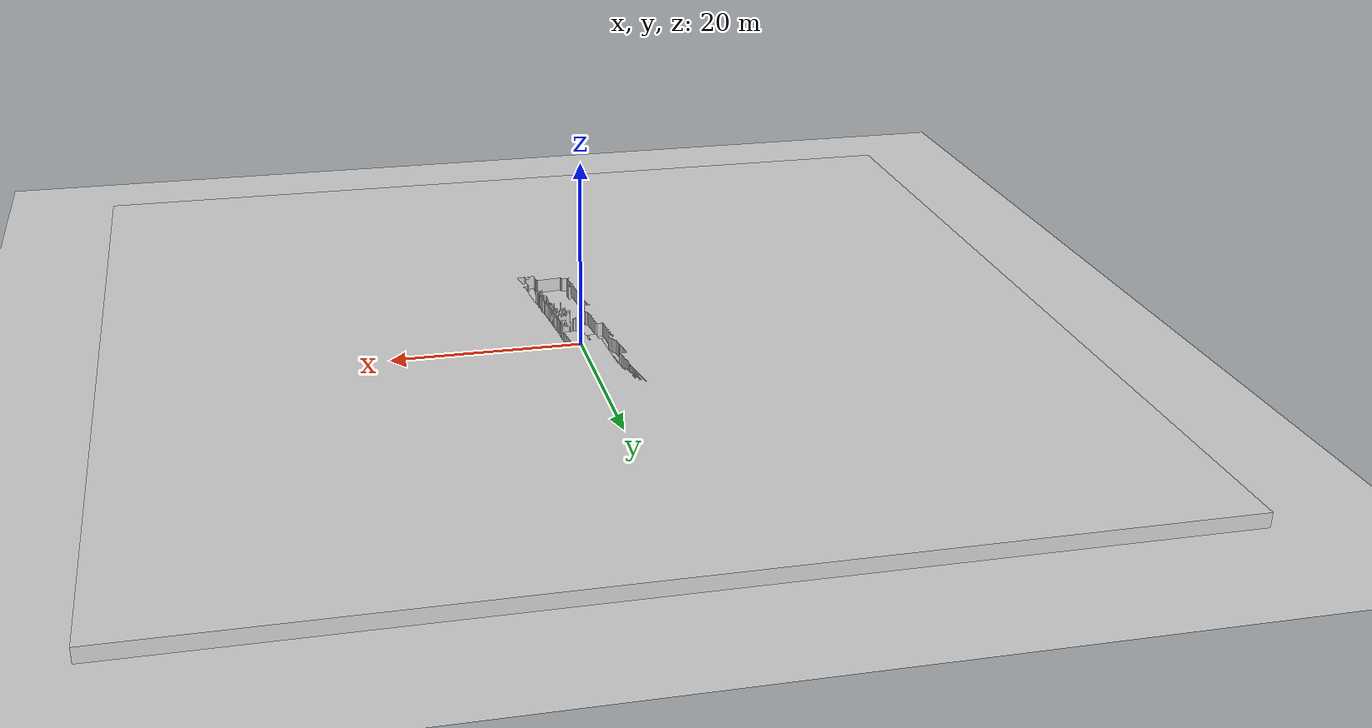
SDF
<?xml version="1.0" ?>
<sdf version="1.0">
  <world name="default">
    <physics type="ode">
      <gravity>0 0 -9.8</gravity>
      <ode>
        <solver>
          <type>quick</type>
          <iters>20</iters>
          <sor>1.0</sor>
        </solver>
        <constraints>
          <cfm>0.0</cfm>
          <erp>0.2</erp>
          <contact_max_correcting_vel>100.0</contact_max_correcting_vel>
          <contact_surface_layer>0.0</contact_surface_layer>
        </constraints>
      </ode>
      <max_step_size>0.001</max_step_size>
    </physics>
    <!-- A global light source -->
    <include>
      <uri>model://sun</uri>
    </include>
    <!-- A ground plane -->
    <include>
      <uri>model://ground_plane</uri>
    </include>
    <include>
      <uri>model://icelab_room</uri>
      <pose>-50.0 -50.0 0 0 0 0</pose>
    </include>
  </world>
</sdf>

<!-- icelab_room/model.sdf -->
<sdf version="1.0">
  <model name="icelab_room">
    <static>true</static>
    <pose>0 0 0 0 0 0</pose>
    <link name="walls">
      <collision name="collision">
        <geometry>
          <mesh>
            <uri>model://icelab_room/meshes/icelab_room.dae</uri>
          </mesh>
        </geometry>
      </collision>
      <visual name="visual">
        <geometry>
          <mesh>
            <uri>model://icelab_room/meshes/icelab_room.dae</uri>
          </mesh>
        </geometry>
        <cast_shadows>false</cast_shadows>
      </visual>
    </link>
  </model>
</sdf>
